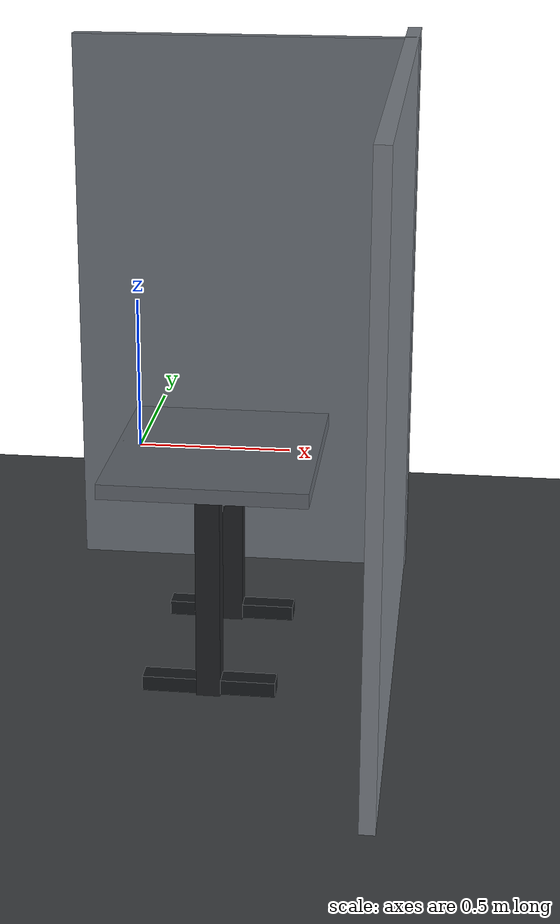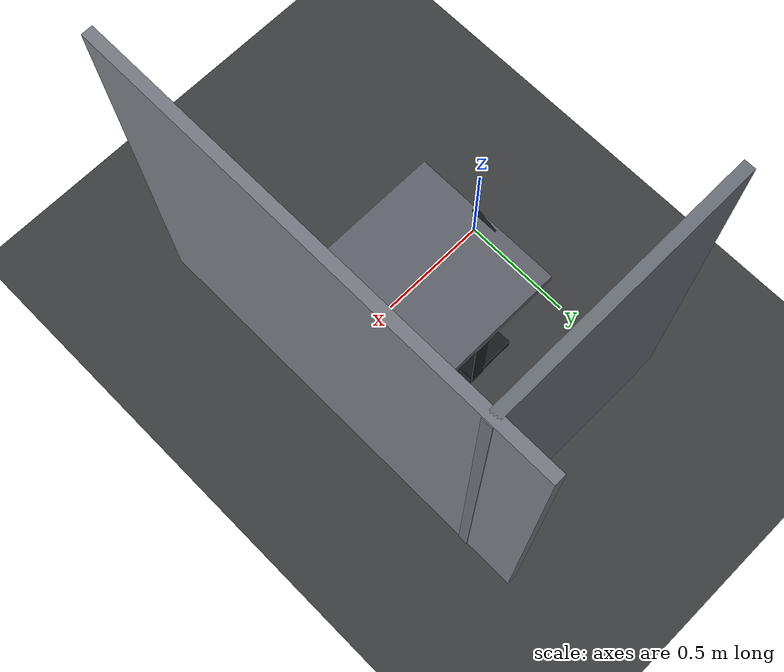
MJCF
<mujoco>
  <!-- Keep the default viewer focused on the arm instead of the room walls. -->
  <statistic center="0.24 0 0.05" extent="0.65"/>

  <asset>
    <texture type="skybox" builtin="gradient" rgb1="0.22 0.25 0.29" rgb2="0.05 0.06 0.08"
      width="512" height="3072"/>
    <material name="desk_surface" rgba="0.38 0.40 0.43 1" reflectance="0"/>
    <texture type="2d" name="room_floor" builtin="checker" rgb1="0.22 0.23 0.24" rgb2="0.26 0.27 0.28"
      width="512" height="512"/>
    <material name="room_floor" texture="room_floor" texuniform="true" texrepeat="8 8" reflectance="0.04"/>
  </asset>

  <worldbody>
    <light name="room_key" pos="0 0 3.5" dir="0 0 -1" directional="true"
      diffuse="0.70 0.70 0.70" specular="0 0 0"/>

    <!-- Preserve the verified plane contact model while rendering a finite desk. -->
    <geom name="table" type="plane" pos="0 0 0" size="0 0 0.05"
      rgba="0 0 0 0" friction="1 .03 .003"/>
    <geom name="tabletop_visual" type="box" pos="0.26 0 -0.025" size="0.34 0.38 0.025"
      material="desk_surface" contype="0" conaffinity="0"/>

    <!-- A compact two-column standing-desk frame. -->
    <geom name="desk_crossbar" type="box" pos="0.27 0 -0.12" size="0.035 0.31 0.025"
      rgba="0.10 0.11 0.12 1" contype="0" conaffinity="0"/>
    <geom name="desk_leg_left" type="box" pos="0.27 0.29 -0.40" size="0.04 0.04 0.35"
      rgba="0.12 0.13 0.14 1" contype="0" conaffinity="0"/>
    <geom name="desk_leg_right" type="box" pos="0.27 -0.29 -0.40" size="0.04 0.04 0.35"
      rgba="0.12 0.13 0.14 1" contype="0" conaffinity="0"/>
    <geom name="desk_foot_left" type="box" pos="0.27 0.29 -0.72" size="0.22 0.035 0.025"
      rgba="0.10 0.11 0.12 1" contype="0" conaffinity="0"/>
    <geom name="desk_foot_right" type="box" pos="0.27 -0.29 -0.72" size="0.22 0.035 0.025"
      rgba="0.10 0.11 0.12 1" contype="0" conaffinity="0"/>

    <!-- Visual C-clamp beneath the SO-101 base at the near table edge. -->
    <geom name="robot_clamp_edge" type="box" pos="-0.068 0 -0.045" size="0.012 0.07 0.045"
      rgba="0.08 0.09 0.10 1" contype="0" conaffinity="0"/>
    <geom name="robot_clamp_lower" type="box" pos="-0.018 0 -0.064" size="0.05 0.07 0.010"
      rgba="0.08 0.09 0.10 1" contype="0" conaffinity="0"/>

    <geom name="room_floor" type="plane" pos="0 0 -0.75" size="0 0 0.05"
      material="room_floor"/>
    <geom name="room_back_wall" type="box" pos="0.84 0 0.25" size="0.025 1.10 1.0"
      rgba="0.48 0.50 0.53 1" contype="0" conaffinity="0"/>
    <geom name="room_side_wall" type="box" pos="0.25 0.82 0.25" size="0.62 0.025 1.0"
      rgba="0.43 0.45 0.48 1" contype="0" conaffinity="0"/>
  </worldbody>
</mujoco>
